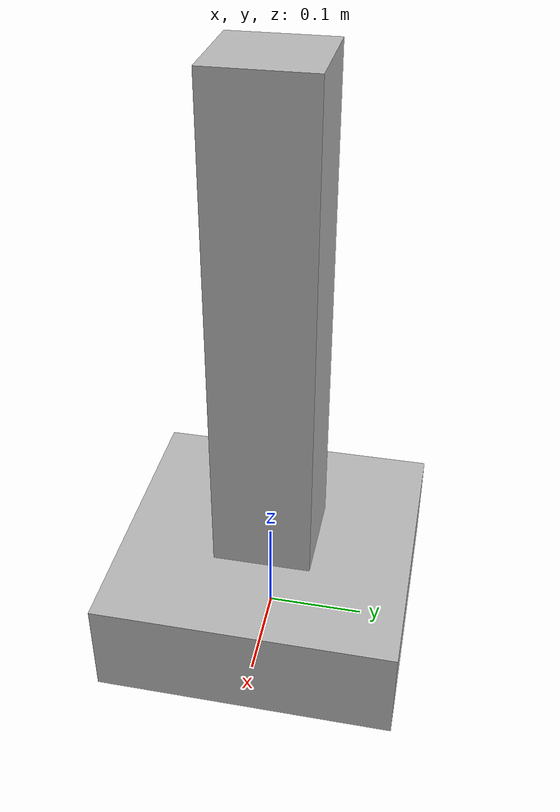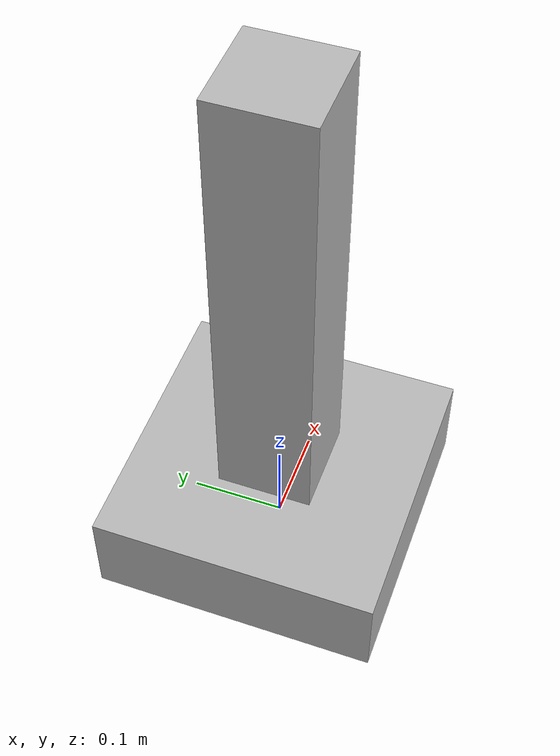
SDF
<sdf version='1.7'>
  <model name='minimal_robot'>
    <link name='base_link'>
      <inertial>
        <pose>0 0 0.05 0 -0 0</pose>
        <mass>1</mass>
        <inertia>
          <ixx>0.01</ixx>
          <ixy>0</ixy>
          <ixz>0</ixz>
          <iyy>0.01</iyy>
          <iyz>0</iyz>
          <izz>0.01</izz>
        </inertia>
      </inertial>
      <collision name='base_link_collision'>
        <pose>0 0 0.05 0 -0 0</pose>
        <geometry>
          <box>
            <size>0.3 0.3 0.1</size>
          </box>
        </geometry>
      </collision>
      <visual name='base_link_visual'>
        <pose>0 0 0.05 0 -0 0</pose>
        <geometry>
          <box>
            <size>0.3 0.3 0.1</size>
          </box>
        </geometry>
      </visual>
    </link>
    <joint name='joint1' type='revolute'>
      <pose relative_to='base_link'>0 0 0.1 0 -0 0</pose>
      <parent>base_link</parent>
      <child>link1</child>
      <axis>
        <xyz>0 0 1</xyz>
        <limit>
          <lower>-3.14</lower>
          <upper>3.14</upper>
          <effort>10</effort>
          <velocity>5</velocity>
        </limit>
        <dynamics>
          <damping>0.1</damping>
          <friction>0</friction>
          <spring_reference>0</spring_reference>
          <spring_stiffness>0</spring_stiffness>
        </dynamics>
      </axis>
    </joint>
    <link name='link1'>
      <pose relative_to='joint1'>0 0 0 0 -0 0</pose>
      <inertial>
        <pose>0 0 0.25 0 -0 0</pose>
        <mass>1</mass>
        <inertia>
          <ixx>0.02</ixx>
          <ixy>0</ixy>
          <ixz>0</ixz>
          <iyy>0.02</iyy>
          <iyz>0</iyz>
          <izz>0.02</izz>
        </inertia>
      </inertial>
      <collision name='link1_collision'>
        <pose>0 0 0.25 0 -0 0</pose>
        <geometry>
          <box>
            <size>0.1 0.1 0.5</size>
          </box>
        </geometry>
      </collision>
      <visual name='link1_visual'>
        <pose>0 0 0.25 0 -0 0</pose>
        <geometry>
          <box>
            <size>0.1 0.1 0.5</size>
          </box>
        </geometry>
      </visual>
    </link>
  </model>
</sdf>
